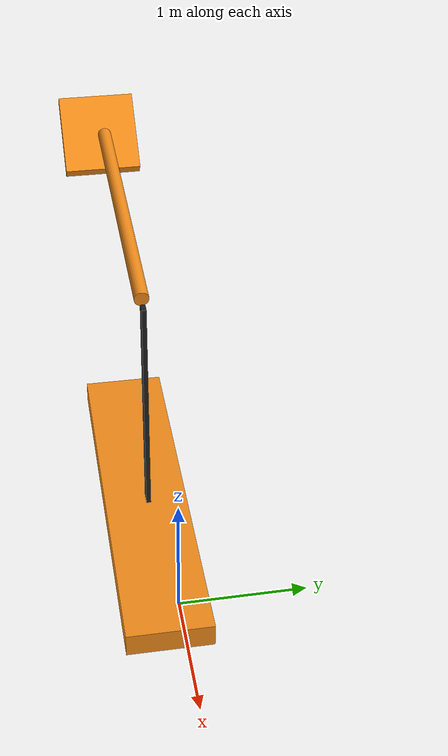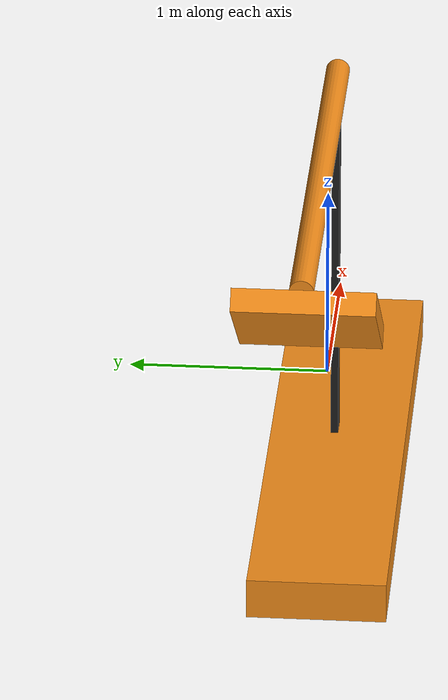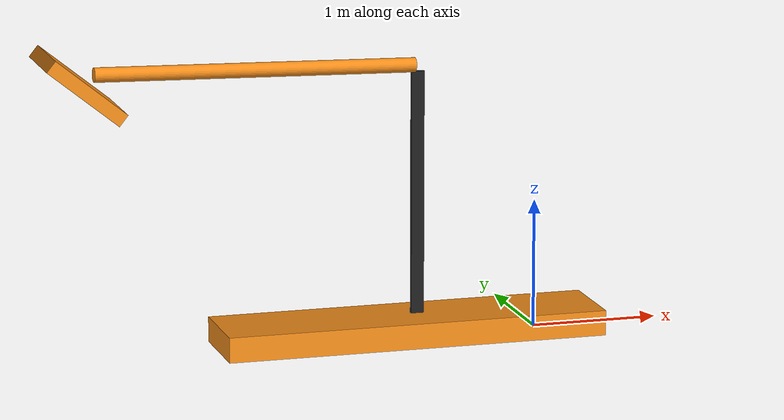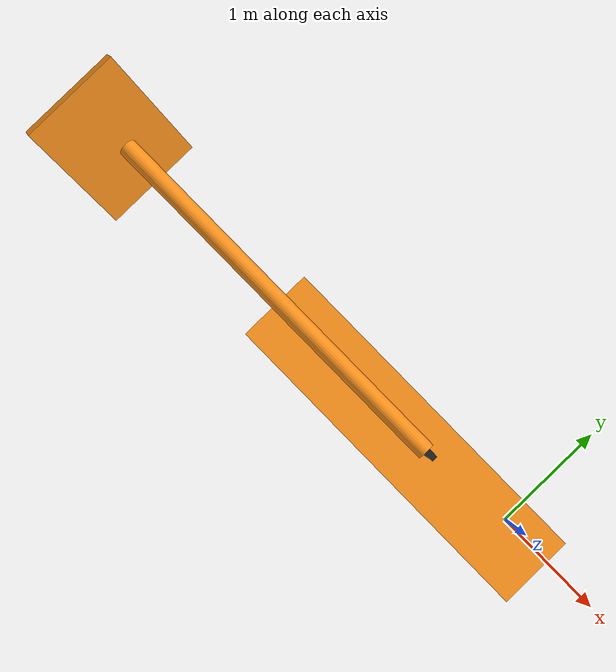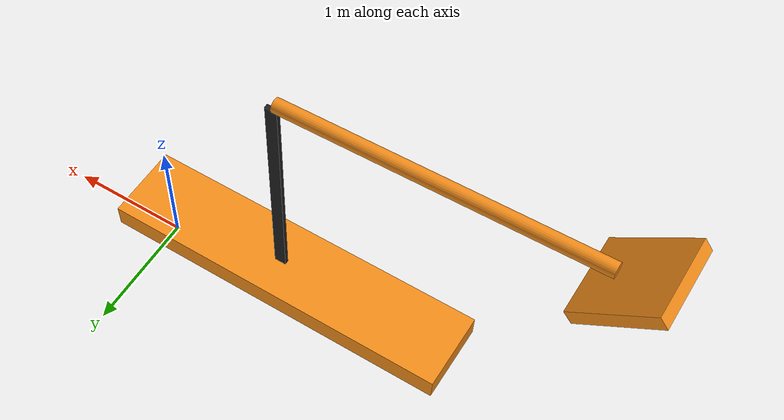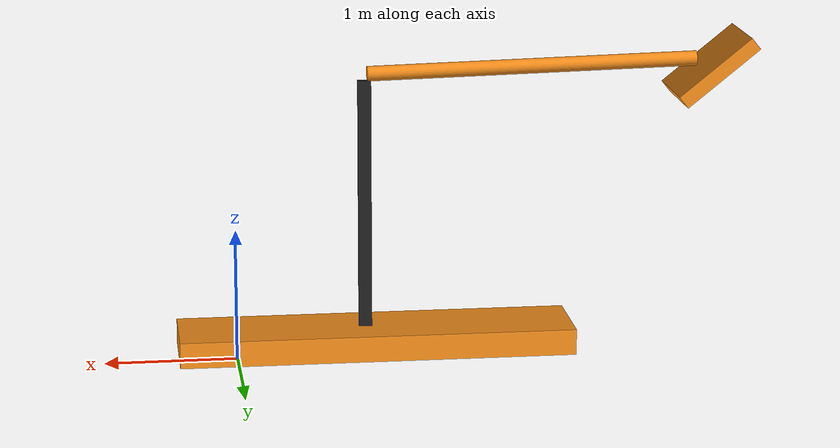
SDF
<sdf version='1.6'>
  <model name='myboat'>
    <link name='base_link'>
      <pose frame=''>0 0 0 0 -0 0</pose>
      <inertial>
        <pose frame=''>-1 -0.12 0.1 0 -0 0</pose>
        <mass>15</mass>
        <inertia>
          <ixx>0.6</ixx>
          <ixy>0</ixy>
          <ixz>0</ixz>
          <iyy>11</iyy>
          <iyz>2.77556e-17</iyz>
          <izz>11.8</izz>
        </inertia>
      </inertial>
      <collision name='base_link_fixed_joint_lump__myboat__base_collision'>
        <pose frame=''>-1 -0.12 0.1 0 -0 0</pose>
        <geometry>
          <box>
            <size>3 0.663318 0.197068</size>
          </box>
        </geometry>
        <surface>
          <contact>
            <ode/>
          </contact>
          <friction>
            <ode/>
          </friction>
        </surface>
      </collision>
      <visual name='base_link_fixed_joint_lump__myboat__base_visual'>
        <pose frame=''>-1.06112 -0.1246 0.1 0 -0 0</pose>
        <geometry>
          <box>
            <size>3 0.663318 0.197068</size>
          </box>
        </geometry>
        <material>
          <script>
            <name>Gazebo/Orange</name>
            <uri>file://media/materials/scripts/gazebo.material</uri>
          </script>
        </material>
      </visual>
      <gravity>1</gravity>
      <velocity_decay/>
    </link>
    <link name='myboat__body'>
      <pose frame=''>-0.98209 -0.1049 0.15209 0 0 -4e-05</pose>
      <inertial>
        <pose frame=''>0 0 0.97 0 -0 0</pose>
        <mass>60</mass>
        <inertia>
          <ixx>19</ixx>
          <ixy>0</ixy>
          <ixz>0</ixz>
          <iyy>19</iyy>
          <iyz>0</iyz>
          <izz>0.056</izz>
        </inertia>
      </inertial>
      <collision name='myboat__body_collision'>
        <pose frame=''>0 0 0.97 0 -0 0</pose>
        <geometry>
          <box>
            <size>0.100516 0.036549 1.95488</size>
          </box>
        </geometry>
        <surface>
          <contact>
            <ode/>
          </contact>
          <friction>
            <ode>
              <mu>0.2</mu>
              <mu2>0.2</mu2>
            </ode>
          </friction>
        </surface>
      </collision>
      <visual name='myboat__body_visual'>
        <pose frame=''>0 0 0.97 0 -0 0</pose>
        <geometry>
          <box>
            <size>0.100516 0.036549 1.95488</size>
          </box>
        </geometry>
        <material>
          <script>
            <name>Gazebo/Black</name>
            <uri>file://media/materials/scripts/gazebo.material</uri>
          </script>
        </material>
      </visual>
      <gravity>1</gravity>
      <velocity_decay/>
    </link>
    <joint name='base_body' type='revolute'>
      <child>myboat__body</child>
      <parent>base_link</parent>
      <axis>
        <xyz>4e-05 1 0</xyz>
        <limit>
          <lower>-1.4</lower>
          <upper>1.4</upper>
          <effort>2000</effort>
          <velocity>1</velocity>
        </limit>
        <dynamics>
          <spring_reference>0</spring_reference>
          <spring_stiffness>0</spring_stiffness>
        </dynamics>
        <use_parent_model_frame>1</use_parent_model_frame>
      </axis>
      <physics>
        <provide_feedback>1</provide_feedback>
        <ode>
          <provide_feedback>1</provide_feedback>
          <limit>
            <cfm>0</cfm>
            <erp>0.2</erp>
          </limit>
        </ode>
      </physics>
      <sensor name='bb_force_torque' type='force_torque'>
        <update_rate>30</update_rate>
      </sensor>
    </joint>
    <link name='myboat__arm'>
      <pose frame=''>-0.95495 -0.111551 2.14749 -0.00145 -1.54681 0.00371</pose>
      <inertial>
        <pose frame=''>0 0 1.3 0 -0 0</pose>
        <mass>1</mass>
        <inertia>
          <ixx>0.32</ixx>
          <ixy>0</ixy>
          <ixz>0</ixz>
          <iyy>0.32</iyy>
          <iyz>0</iyz>
          <izz>0.0016</izz>
        </inertia>
      </inertial>
      <collision name='myboat__arm_collision'>
        <pose frame=''>0 0 1.3 0 -0 0</pose>
        <geometry>
          <cylinder>
            <length>1.97792</length>
            <radius>0.05655</radius>
          </cylinder>
        </geometry>
        <surface>
          <contact>
            <ode/>
          </contact>
          <friction>
            <ode>
              <mu>0.2</mu>
              <mu2>0.2</mu2>
            </ode>
          </friction>
        </surface>
      </collision>
      <visual name='myboat__arm_visual'>
        <pose frame=''>0 0 1.3 0 -0 0</pose>
        <geometry>
          <cylinder>
            <length>2.5</length>
            <radius>0.05655</radius>
          </cylinder>
        </geometry>
        <material>
          <script>
            <name>Gazebo/Orange</name>
            <uri>file://media/materials/scripts/gazebo.material</uri>
          </script>
        </material>
      </visual>
      <gravity>1</gravity>
      <velocity_decay/>
    </link>
    <joint name='body_arm' type='revolute'>
      <child>myboat__arm</child>
      <parent>myboat__body</parent>
      <axis>
        <xyz>-0.00226 0.999997 -3.5e-05</xyz>
        <limit>
          <lower>-1.4</lower>
          <upper>1.4</upper>
          <effort>200</effort>
          <velocity>1</velocity>
        </limit>
        <dynamics>
          <spring_reference>0</spring_reference>
          <spring_stiffness>0</spring_stiffness>
        </dynamics>
        <use_parent_model_frame>1</use_parent_model_frame>
      </axis>
      <physics>
        <provide_feedback>1</provide_feedback>
        <ode>
          <provide_feedback>1</provide_feedback>
          <limit>
            <cfm>0</cfm>
            <erp>0.2</erp>
          </limit>
        </ode>
      </physics>
      <sensor name='ba_force_torque' type='force_torque'>
        <update_rate>30</update_rate>
      </sensor>
    </joint>
    <link name='myboat__blad'>
      <pose frame=''>-3.5972 -0.153913 2.18039 5e-06 0.678389 2e-06</pose>
      <inertial>
        <pose frame=''>0 0 -0.05 0 -0 0</pose>
        <mass>1</mass>
        <inertia>
          <ixx>0.34</ixx>
          <ixy>0</ixy>
          <ixz>0</ixz>
          <iyy>0.34</iyy>
          <iyz>0</iyz>
          <izz>0.73</izz>
        </inertia>
      </inertial>
      <collision name='myboat__blad_collision'>
        <pose frame=''>0 0 -0.05 0 -0 0</pose>
        <geometry>
          <box>
            <size>0.695693 0.648073 0.108244</size>
          </box>
        </geometry>
        <surface>
          <contact>
            <ode/>
          </contact>
          <friction>
            <ode>
              <mu>0.2</mu>
              <mu2>0.2</mu2>
            </ode>
          </friction>
        </surface>
      </collision>
      <visual name='myboat__blad_visual'>
        <pose frame=''>0 0 -0.05 0 -0 0</pose>
        <geometry>
          <box>
            <size>0.695693 0.648073 0.108244</size>
          </box>
        </geometry>
        <material>
          <script>
            <name>Gazebo/Orange</name>
            <uri>file://media/materials/scripts/gazebo.material</uri>
          </script>
        </material>
      </visual>
      <gravity>1</gravity>
      <velocity_decay/>
    </link>
    <joint name='arm_blad' type='revolute'>
      <child>myboat__blad</child>
      <parent>myboat__arm</parent>
      <axis>
        <xyz>1e-06 1 4e-06</xyz>
        <limit>
          <lower>-1.4</lower>
          <upper>1.4</upper>
          <effort>10</effort>
          <velocity>1</velocity>
        </limit>
        <dynamics>
          <spring_reference>0</spring_reference>
          <spring_stiffness>0</spring_stiffness>
        </dynamics>
        <use_parent_model_frame>1</use_parent_model_frame>
      </axis>
      <physics>
        <provide_feedback>1</provide_feedback>
        <ode>
          <provide_feedback>1</provide_feedback>
          <limit>
            <cfm>0</cfm>
            <erp>0.2</erp>
          </limit>
        </ode>
      </physics>
      <sensor name='ab_force_torque' type='force_torque'>
        <update_rate>30</update_rate>
      </sensor>
    </joint>
    <self_collide>1</self_collide>
    <plugin name='gazebo_ros_control' filename='libgazebo_ros_control.so'>
      <robotNamespace>/boot0</robotNamespace>
      <robotSimType>gazebo_ros_control/DefaultRobotHWSim</robotSimType>
    </plugin>
    <static>0</static>
    <plugin name='bb_sensor' filename='libgazebo_ros_ft_sensor.so'>
      <updateRate>10.0</updateRate>
      <topicName>bb_sensor_topic</topicName>
      <jointName>base_body</jointName>
    </plugin>
    <plugin name='ba_sensor' filename='libgazebo_ros_ft_sensor.so'>
      <updateRate>10.0</updateRate>
      <topicName>ba_sensor_topic</topicName>
      <jointName>body_arm</jointName>
    </plugin>
    <plugin name='ab_sensor' filename='libgazebo_ros_ft_sensor.so'>
      <updateRate>10.0</updateRate>
      <topicName>ab_sensor_topic</topicName>
      <jointName>arm_blad</jointName>
    </plugin>
  </model>
</sdf>
